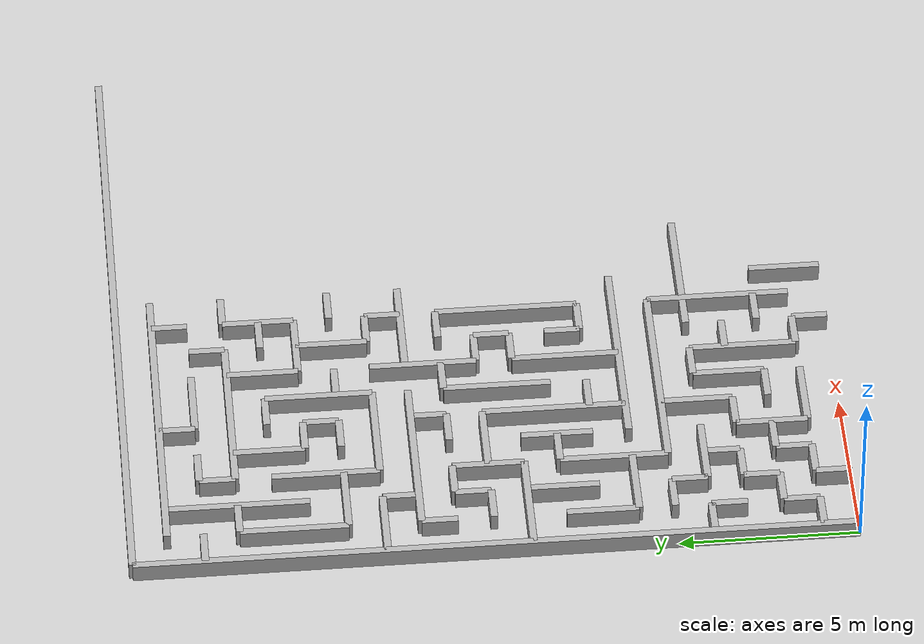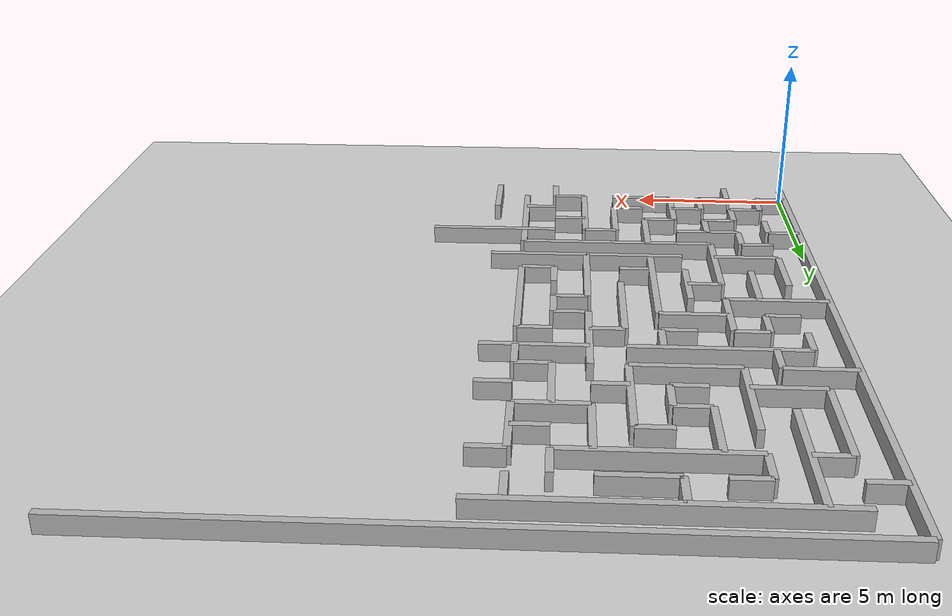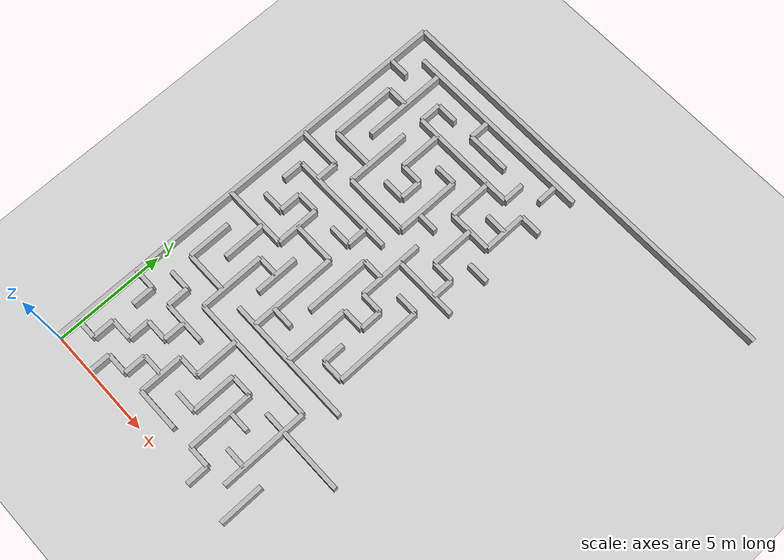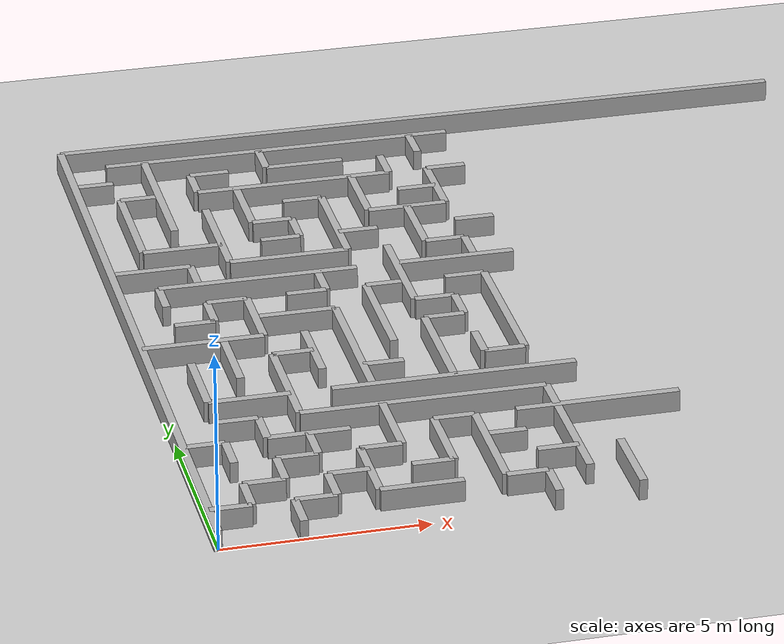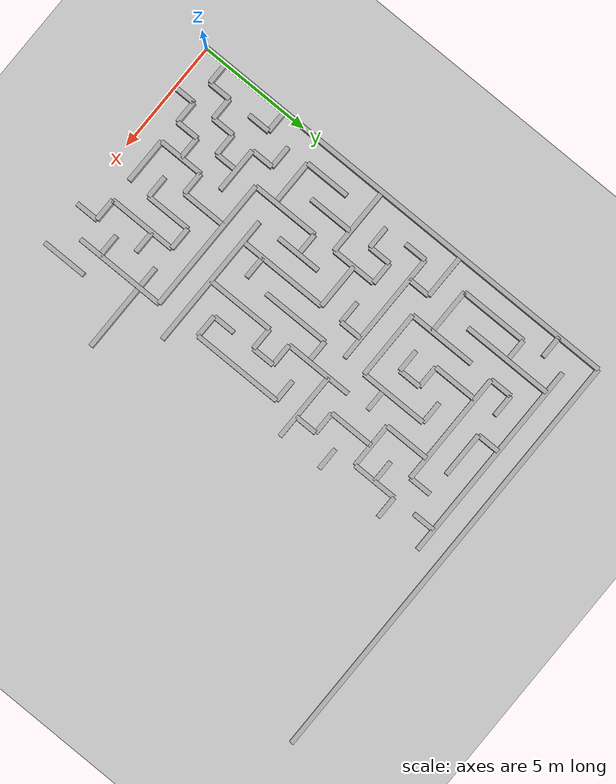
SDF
<sdf version="1.6">
 <world name="maze_world">
  <model name="ground_plane">
   <static>true</static>
   <link name="link">
    <collision name="collision">
     <geometry><plane><normal>0 0 1</normal><size>100 100</size></plane></geometry>
    </collision>
    <visual name="visual">
     <geometry><plane><normal>0 0 1</normal><size>100 100</size></plane></geometry>
     <material><ambient>0.8 0.8 0.8 1</ambient></material>
    </visual>
   </link>
  </model>
  <model name="wall_0">
   <static>true</static>
   <pose>0.5 1 0 0 0 0</pose>
   <link name="link">
    <collision name="collision"><geometry><box><size>1 0.2 1</size></box></geometry></collision>
    <visual name="visual">
     <geometry><box><size>1 0.2 1</size></box></geometry>
     <material><ambient>0.7 0.7 0.7 1</ambient></material>
    </visual>
   </link>
  </model>
  <model name="wall_1">
   <static>true</static>
   <pose>2.5 1 0 0 0 0</pose>
   <link name="link">
    <collision name="collision"><geometry><box><size>1 0.2 1</size></box></geometry></collision>
    <visual name="visual">
     <geometry><box><size>1 0.2 1</size></box></geometry>
     <material><ambient>0.7 0.7 0.7 1</ambient></material>
    </visual>
   </link>
  </model>
  <model name="wall_2">
   <static>true</static>
   <pose>5 1 0 0 0 0</pose>
   <link name="link">
    <collision name="collision"><geometry><box><size>2 0.2 1</size></box></geometry></collision>
    <visual name="visual">
     <geometry><box><size>2 0.2 1</size></box></geometry>
     <material><ambient>0.7 0.7 0.7 1</ambient></material>
    </visual>
   </link>
  </model>
  <model name="wall_3">
   <static>true</static>
   <pose>7.5 1 0 0 0 0</pose>
   <link name="link">
    <collision name="collision"><geometry><box><size>1 0.2 1</size></box></geometry></collision>
    <visual name="visual">
     <geometry><box><size>1 0.2 1</size></box></geometry>
     <material><ambient>0.7 0.7 0.7 1</ambient></material>
    </visual>
   </link>
  </model>
  <model name="wall_7">
   <static>true</static>
   <pose>1.5 2 0 0 0 0</pose>
   <link name="link">
    <collision name="collision"><geometry><box><size>1 0.2 1</size></box></geometry></collision>
    <visual name="visual">
     <geometry><box><size>1 0.2 1</size></box></geometry>
     <material><ambient>0.7 0.7 0.7 1</ambient></material>
    </visual>
   </link>
  </model>
  <model name="wall_8">
   <static>true</static>
   <pose>3.5 2 0 0 0 0</pose>
   <link name="link">
    <collision name="collision"><geometry><box><size>1 0.2 1</size></box></geometry></collision>
    <visual name="visual">
     <geometry><box><size>1 0.2 1</size></box></geometry>
     <material><ambient>0.7 0.7 0.7 1</ambient></material>
    </visual>
   </link>
  </model>
  <model name="wall_9">
   <static>true</static>
   <pose>5.5 2 0 0 0 0</pose>
   <link name="link">
    <collision name="collision"><geometry><box><size>1 0.2 1</size></box></geometry></collision>
    <visual name="visual">
     <geometry><box><size>1 0.2 1</size></box></geometry>
     <material><ambient>0.7 0.7 0.7 1</ambient></material>
    </visual>
   </link>
  </model>
  <model name="wall_10">
   <static>true</static>
   <pose>8.5 2 0 0 0 0</pose>
   <link name="link">
    <collision name="collision"><geometry><box><size>1 0.2 1</size></box></geometry></collision>
    <visual name="visual">
     <geometry><box><size>1 0.2 1</size></box></geometry>
     <material><ambient>0.7 0.7 0.7 1</ambient></material>
    </visual>
   </link>
  </model>
  <model name="wall_14">
   <static>true</static>
   <pose>2.5 3 0 0 0 0</pose>
   <link name="link">
    <collision name="collision"><geometry><box><size>1 0.2 1</size></box></geometry></collision>
    <visual name="visual">
     <geometry><box><size>1 0.2 1</size></box></geometry>
     <material><ambient>0.7 0.7 0.7 1</ambient></material>
    </visual>
   </link>
  </model>
  <model name="wall_15">
   <static>true</static>
   <pose>4.5 3 0 0 0 0</pose>
   <link name="link">
    <collision name="collision"><geometry><box><size>1 0.2 1</size></box></geometry></collision>
    <visual name="visual">
     <geometry><box><size>1 0.2 1</size></box></geometry>
     <material><ambient>0.7 0.7 0.7 1</ambient></material>
    </visual>
   </link>
  </model>
  <model name="wall_16">
   <static>true</static>
   <pose>7.5 3 0 0 0 0</pose>
   <link name="link">
    <collision name="collision"><geometry><box><size>1 0.2 1</size></box></geometry></collision>
    <visual name="visual">
     <geometry><box><size>1 0.2 1</size></box></geometry>
     <material><ambient>0.7 0.7 0.7 1</ambient></material>
    </visual>
   </link>
  </model>
  <model name="wall_20">
   <static>true</static>
   <pose>0.5 4 0 0 0 0</pose>
   <link name="link">
    <collision name="collision"><geometry><box><size>1 0.2 1</size></box></geometry></collision>
    <visual name="visual">
     <geometry><box><size>1 0.2 1</size></box></geometry>
     <material><ambient>0.7 0.7 0.7 1</ambient></material>
    </visual>
   </link>
  </model>
  <model name="wall_21">
   <static>true</static>
   <pose>3 4 0 0 0 0</pose>
   <link name="link">
    <collision name="collision"><geometry><box><size>2 0.2 1</size></box></geometry></collision>
    <visual name="visual">
     <geometry><box><size>2 0.2 1</size></box></geometry>
     <material><ambient>0.7 0.7 0.7 1</ambient></material>
    </visual>
   </link>
  </model>
  <model name="wall_22">
   <static>true</static>
   <pose>6.5 4 0 0 0 0</pose>
   <link name="link">
    <collision name="collision"><geometry><box><size>1 0.2 1</size></box></geometry></collision>
    <visual name="visual">
     <geometry><box><size>1 0.2 1</size></box></geometry>
     <material><ambient>0.7 0.7 0.7 1</ambient></material>
    </visual>
   </link>
  </model>
  <model name="wall_23">
   <static>true</static>
   <pose>10 4 0 0 0 0</pose>
   <link name="link">
    <collision name="collision"><geometry><box><size>4 0.2 1</size></box></geometry></collision>
    <visual name="visual">
     <geometry><box><size>4 0.2 1</size></box></geometry>
     <material><ambient>0.7 0.7 0.7 1</ambient></material>
    </visual>
   </link>
  </model>
  <model name="wall_25">
   <static>true</static>
   <pose>1.5 5 0 0 0 0</pose>
   <link name="link">
    <collision name="collision"><geometry><box><size>1 0.2 1</size></box></geometry></collision>
    <visual name="visual">
     <geometry><box><size>1 0.2 1</size></box></geometry>
     <material><ambient>0.7 0.7 0.7 1</ambient></material>
    </visual>
   </link>
  </model>
  <model name="wall_26">
   <static>true</static>
   <pose>6 5 0 0 0 0</pose>
   <link name="link">
    <collision name="collision"><geometry><box><size>6 0.2 1</size></box></geometry></collision>
    <visual name="visual">
     <geometry><box><size>6 0.2 1</size></box></geometry>
     <material><ambient>0.7 0.7 0.7 1</ambient></material>
    </visual>
   </link>
  </model>
  <model name="wall_30">
   <static>true</static>
   <pose>2 6 0 0 0 0</pose>
   <link name="link">
    <collision name="collision"><geometry><box><size>2 0.2 1</size></box></geometry></collision>
    <visual name="visual">
     <geometry><box><size>2 0.2 1</size></box></geometry>
     <material><ambient>0.7 0.7 0.7 1</ambient></material>
    </visual>
   </link>
  </model>
  <model name="wall_31">
   <static>true</static>
   <pose>7 6 0 0 0 0</pose>
   <link name="link">
    <collision name="collision"><geometry><box><size>6 0.2 1</size></box></geometry></collision>
    <visual name="visual">
     <geometry><box><size>6 0.2 1</size></box></geometry>
     <material><ambient>0.7 0.7 0.7 1</ambient></material>
    </visual>
   </link>
  </model>
  <model name="wall_34">
   <static>true</static>
   <pose>5.5 7 0 0 0 0</pose>
   <link name="link">
    <collision name="collision"><geometry><box><size>1 0.2 1</size></box></geometry></collision>
    <visual name="visual">
     <geometry><box><size>1 0.2 1</size></box></geometry>
     <material><ambient>0.7 0.7 0.7 1</ambient></material>
    </visual>
   </link>
  </model>
  <model name="wall_35">
   <static>true</static>
   <pose>8.5 7 0 0 0 0</pose>
   <link name="link">
    <collision name="collision"><geometry><box><size>1 0.2 1</size></box></geometry></collision>
    <visual name="visual">
     <geometry><box><size>1 0.2 1</size></box></geometry>
     <material><ambient>0.7 0.7 0.7 1</ambient></material>
    </visual>
   </link>
  </model>
  <model name="wall_38">
   <static>true</static>
   <pose>3.5 8 0 0 0 0</pose>
   <link name="link">
    <collision name="collision"><geometry><box><size>1 0.2 1</size></box></geometry></collision>
    <visual name="visual">
     <geometry><box><size>1 0.2 1</size></box></geometry>
     <material><ambient>0.7 0.7 0.7 1</ambient></material>
    </visual>
   </link>
  </model>
  <model name="wall_41">
   <static>true</static>
   <pose>1.5 9 0 0 0 0</pose>
   <link name="link">
    <collision name="collision"><geometry><box><size>3 0.2 1</size></box></geometry></collision>
    <visual name="visual">
     <geometry><box><size>3 0.2 1</size></box></geometry>
     <material><ambient>0.7 0.7 0.7 1</ambient></material>
    </visual>
   </link>
  </model>
  <model name="wall_42">
   <static>true</static>
   <pose>7.5 9 0 0 0 0</pose>
   <link name="link">
    <collision name="collision"><geometry><box><size>1 0.2 1</size></box></geometry></collision>
    <visual name="visual">
     <geometry><box><size>1 0.2 1</size></box></geometry>
     <material><ambient>0.7 0.7 0.7 1</ambient></material>
    </visual>
   </link>
  </model>
  <model name="wall_46">
   <static>true</static>
   <pose>1.5 10 0 0 0 0</pose>
   <link name="link">
    <collision name="collision"><geometry><box><size>1 0.2 1</size></box></geometry></collision>
    <visual name="visual">
     <geometry><box><size>1 0.2 1</size></box></geometry>
     <material><ambient>0.7 0.7 0.7 1</ambient></material>
    </visual>
   </link>
  </model>
  <model name="wall_47">
   <static>true</static>
   <pose>4 10 0 0 0 0</pose>
   <link name="link">
    <collision name="collision"><geometry><box><size>2 0.2 1</size></box></geometry></collision>
    <visual name="visual">
     <geometry><box><size>2 0.2 1</size></box></geometry>
     <material><ambient>0.7 0.7 0.7 1</ambient></material>
    </visual>
   </link>
  </model>
  <model name="wall_48">
   <static>true</static>
   <pose>7.5 10 0 0 0 0</pose>
   <link name="link">
    <collision name="collision"><geometry><box><size>1 0.2 1</size></box></geometry></collision>
    <visual name="visual">
     <geometry><box><size>1 0.2 1</size></box></geometry>
     <material><ambient>0.7 0.7 0.7 1</ambient></material>
    </visual>
   </link>
  </model>
  <model name="wall_51">
   <static>true</static>
   <pose>2.5 11 0 0 0 0</pose>
   <link name="link">
    <collision name="collision"><geometry><box><size>1 0.2 1</size></box></geometry></collision>
    <visual name="visual">
     <geometry><box><size>1 0.2 1</size></box></geometry>
     <material><ambient>0.7 0.7 0.7 1</ambient></material>
    </visual>
   </link>
  </model>
  <model name="wall_52">
   <static>true</static>
   <pose>4.5 11 0 0 0 0</pose>
   <link name="link">
    <collision name="collision"><geometry><box><size>1 0.2 1</size></box></geometry></collision>
    <visual name="visual">
     <geometry><box><size>1 0.2 1</size></box></geometry>
     <material><ambient>0.7 0.7 0.7 1</ambient></material>
    </visual>
   </link>
  </model>
  <model name="wall_53">
   <static>true</static>
   <pose>6.5 11 0 0 0 0</pose>
   <link name="link">
    <collision name="collision"><geometry><box><size>1 0.2 1</size></box></geometry></collision>
    <visual name="visual">
     <geometry><box><size>1 0.2 1</size></box></geometry>
     <material><ambient>0.7 0.7 0.7 1</ambient></material>
    </visual>
   </link>
  </model>
  <model name="wall_54">
   <static>true</static>
   <pose>8.5 11 0 0 0 0</pose>
   <link name="link">
    <collision name="collision"><geometry><box><size>1 0.2 1</size></box></geometry></collision>
    <visual name="visual">
     <geometry><box><size>1 0.2 1</size></box></geometry>
     <material><ambient>0.7 0.7 0.7 1</ambient></material>
    </visual>
   </link>
  </model>
  <model name="wall_56">
   <static>true</static>
   <pose>3.5 12 0 0 0 0</pose>
   <link name="link">
    <collision name="collision"><geometry><box><size>5 0.2 1</size></box></geometry></collision>
    <visual name="visual">
     <geometry><box><size>5 0.2 1</size></box></geometry>
     <material><ambient>0.7 0.7 0.7 1</ambient></material>
    </visual>
   </link>
  </model>
  <model name="wall_57">
   <static>true</static>
   <pose>8.5 12 0 0 0 0</pose>
   <link name="link">
    <collision name="collision"><geometry><box><size>3 0.2 1</size></box></geometry></collision>
    <visual name="visual">
     <geometry><box><size>3 0.2 1</size></box></geometry>
     <material><ambient>0.7 0.7 0.7 1</ambient></material>
    </visual>
   </link>
  </model>
  <model name="wall_60">
   <static>true</static>
   <pose>1 13 0 0 0 0</pose>
   <link name="link">
    <collision name="collision"><geometry><box><size>2 0.2 1</size></box></geometry></collision>
    <visual name="visual">
     <geometry><box><size>2 0.2 1</size></box></geometry>
     <material><ambient>0.7 0.7 0.7 1</ambient></material>
    </visual>
   </link>
  </model>
  <model name="wall_61">
   <static>true</static>
   <pose>4.5 13 0 0 0 0</pose>
   <link name="link">
    <collision name="collision"><geometry><box><size>3 0.2 1</size></box></geometry></collision>
    <visual name="visual">
     <geometry><box><size>3 0.2 1</size></box></geometry>
     <material><ambient>0.7 0.7 0.7 1</ambient></material>
    </visual>
   </link>
  </model>
  <model name="wall_62">
   <static>true</static>
   <pose>8.5 13 0 0 0 0</pose>
   <link name="link">
    <collision name="collision"><geometry><box><size>1 0.2 1</size></box></geometry></collision>
    <visual name="visual">
     <geometry><box><size>1 0.2 1</size></box></geometry>
     <material><ambient>0.7 0.7 0.7 1</ambient></material>
    </visual>
   </link>
  </model>
  <model name="wall_66">
   <static>true</static>
   <pose>2 14 0 0 0 0</pose>
   <link name="link">
    <collision name="collision"><geometry><box><size>2 0.2 1</size></box></geometry></collision>
    <visual name="visual">
     <geometry><box><size>2 0.2 1</size></box></geometry>
     <material><ambient>0.7 0.7 0.7 1</ambient></material>
    </visual>
   </link>
  </model>
  <model name="wall_67">
   <static>true</static>
   <pose>4.5 14 0 0 0 0</pose>
   <link name="link">
    <collision name="collision"><geometry><box><size>1 0.2 1</size></box></geometry></collision>
    <visual name="visual">
     <geometry><box><size>1 0.2 1</size></box></geometry>
     <material><ambient>0.7 0.7 0.7 1</ambient></material>
    </visual>
   </link>
  </model>
  <model name="wall_68">
   <static>true</static>
   <pose>6.5 14 0 0 0 0</pose>
   <link name="link">
    <collision name="collision"><geometry><box><size>1 0.2 1</size></box></geometry></collision>
    <visual name="visual">
     <geometry><box><size>1 0.2 1</size></box></geometry>
     <material><ambient>0.7 0.7 0.7 1</ambient></material>
    </visual>
   </link>
  </model>
  <model name="wall_69">
   <static>true</static>
   <pose>9.5 14 0 0 0 0</pose>
   <link name="link">
    <collision name="collision"><geometry><box><size>1 0.2 1</size></box></geometry></collision>
    <visual name="visual">
     <geometry><box><size>1 0.2 1</size></box></geometry>
     <material><ambient>0.7 0.7 0.7 1</ambient></material>
    </visual>
   </link>
  </model>
  <model name="wall_72">
   <static>true</static>
   <pose>4.5 15 0 0 0 0</pose>
   <link name="link">
    <collision name="collision"><geometry><box><size>1 0.2 1</size></box></geometry></collision>
    <visual name="visual">
     <geometry><box><size>1 0.2 1</size></box></geometry>
     <material><ambient>0.7 0.7 0.7 1</ambient></material>
    </visual>
   </link>
  </model>
  <model name="wall_73">
   <static>true</static>
   <pose>8 15 0 0 0 0</pose>
   <link name="link">
    <collision name="collision"><geometry><box><size>2 0.2 1</size></box></geometry></collision>
    <visual name="visual">
     <geometry><box><size>2 0.2 1</size></box></geometry>
     <material><ambient>0.7 0.7 0.7 1</ambient></material>
    </visual>
   </link>
  </model>
  <model name="wall_76">
   <static>true</static>
   <pose>5.5 16 0 0 0 0</pose>
   <link name="link">
    <collision name="collision"><geometry><box><size>1 0.2 1</size></box></geometry></collision>
    <visual name="visual">
     <geometry><box><size>1 0.2 1</size></box></geometry>
     <material><ambient>0.7 0.7 0.7 1</ambient></material>
    </visual>
   </link>
  </model>
  <model name="wall_77">
   <static>true</static>
   <pose>8.5 16 0 0 0 0</pose>
   <link name="link">
    <collision name="collision"><geometry><box><size>1 0.2 1</size></box></geometry></collision>
    <visual name="visual">
     <geometry><box><size>1 0.2 1</size></box></geometry>
     <material><ambient>0.7 0.7 0.7 1</ambient></material>
    </visual>
   </link>
  </model>
  <model name="wall_82">
   <static>true</static>
   <pose>1.5 17 0 0 0 0</pose>
   <link name="link">
    <collision name="collision"><geometry><box><size>1 0.2 1</size></box></geometry></collision>
    <visual name="visual">
     <geometry><box><size>1 0.2 1</size></box></geometry>
     <material><ambient>0.7 0.7 0.7 1</ambient></material>
    </visual>
   </link>
  </model>
  <model name="wall_83">
   <static>true</static>
   <pose>5.5 17 0 0 0 0</pose>
   <link name="link">
    <collision name="collision"><geometry><box><size>5 0.2 1</size></box></geometry></collision>
    <visual name="visual">
     <geometry><box><size>5 0.2 1</size></box></geometry>
     <material><ambient>0.7 0.7 0.7 1</ambient></material>
    </visual>
   </link>
  </model>
  <model name="wall_84">
   <static>true</static>
   <pose>9.5 17 0 0 0 0</pose>
   <link name="link">
    <collision name="collision"><geometry><box><size>1 0.2 1</size></box></geometry></collision>
    <visual name="visual">
     <geometry><box><size>1 0.2 1</size></box></geometry>
     <material><ambient>0.7 0.7 0.7 1</ambient></material>
    </visual>
   </link>
  </model>
  <model name="wall_88">
   <static>true</static>
   <pose>0.5 18 0 0 0 0</pose>
   <link name="link">
    <collision name="collision"><geometry><box><size>1 0.2 1</size></box></geometry></collision>
    <visual name="visual">
     <geometry><box><size>1 0.2 1</size></box></geometry>
     <material><ambient>0.7 0.7 0.7 1</ambient></material>
    </visual>
   </link>
  </model>
  <model name="wall_89">
   <static>true</static>
   <pose>3.5 18 0 0 0 0</pose>
   <link name="link">
    <collision name="collision"><geometry><box><size>1 0.2 1</size></box></geometry></collision>
    <visual name="visual">
     <geometry><box><size>1 0.2 1</size></box></geometry>
     <material><ambient>0.7 0.7 0.7 1</ambient></material>
    </visual>
   </link>
  </model>
  <model name="wall_90">
   <static>true</static>
   <pose>6 18 0 0 0 0</pose>
   <link name="link">
    <collision name="collision"><geometry><box><size>2 0.2 1</size></box></geometry></collision>
    <visual name="visual">
     <geometry><box><size>2 0.2 1</size></box></geometry>
     <material><ambient>0.7 0.7 0.7 1</ambient></material>
    </visual>
   </link>
  </model>
  <model name="wall_94">
   <static>true</static>
   <pose>5.5 19 0 0 0 0</pose>
   <link name="link">
    <collision name="collision"><geometry><box><size>9 0.2 1</size></box></geometry></collision>
    <visual name="visual">
     <geometry><box><size>9 0.2 1</size></box></geometry>
     <material><ambient>0.7 0.7 0.7 1</ambient></material>
    </visual>
   </link>
  </model>
  <model name="wall_98">
   <static>true</static>
   <pose>1 1.5 0 0 0 0</pose>
   <link name="link">
    <collision name="collision"><geometry><box><size>0.2 1 1</size></box></geometry></collision>
    <visual name="visual">
     <geometry><box><size>0.2 1 1</size></box></geometry>
     <material><ambient>0.7 0.7 0.7 1</ambient></material>
    </visual>
   </link>
  </model>
  <model name="wall_99">
   <static>true</static>
   <pose>1 3.5 0 0 0 0</pose>
   <link name="link">
    <collision name="collision"><geometry><box><size>0.2 1 1</size></box></geometry></collision>
    <visual name="visual">
     <geometry><box><size>0.2 1 1</size></box></geometry>
     <material><ambient>0.7 0.7 0.7 1</ambient></material>
    </visual>
   </link>
  </model>
  <model name="wall_100">
   <static>true</static>
   <pose>1 7 0 0 0 0</pose>
   <link name="link">
    <collision name="collision"><geometry><box><size>0.2 2 1</size></box></geometry></collision>
    <visual name="visual">
     <geometry><box><size>0.2 2 1</size></box></geometry>
     <material><ambient>0.7 0.7 0.7 1</ambient></material>
    </visual>
   </link>
  </model>
  <model name="wall_101">
   <static>true</static>
   <pose>1 11.5 0 0 0 0</pose>
   <link name="link">
    <collision name="collision"><geometry><box><size>0.2 1 1</size></box></geometry></collision>
    <visual name="visual">
     <geometry><box><size>0.2 1 1</size></box></geometry>
     <material><ambient>0.7 0.7 0.7 1</ambient></material>
    </visual>
   </link>
  </model>
  <model name="wall_102">
   <static>true</static>
   <pose>1 15.5 0 0 0 0</pose>
   <link name="link">
    <collision name="collision"><geometry><box><size>0.2 3 1</size></box></geometry></collision>
    <visual name="visual">
     <geometry><box><size>0.2 3 1</size></box></geometry>
     <material><ambient>0.7 0.7 0.7 1</ambient></material>
    </visual>
   </link>
  </model>
  <model name="wall_103">
   <static>true</static>
   <pose>2 0.5 0 0 0 0</pose>
   <link name="link">
    <collision name="collision"><geometry><box><size>0.2 1 1</size></box></geometry></collision>
    <visual name="visual">
     <geometry><box><size>0.2 1 1</size></box></geometry>
     <material><ambient>0.7 0.7 0.7 1</ambient></material>
    </visual>
   </link>
  </model>
  <model name="wall_104">
   <static>true</static>
   <pose>2 2.5 0 0 0 0</pose>
   <link name="link">
    <collision name="collision"><geometry><box><size>0.2 1 1</size></box></geometry></collision>
    <visual name="visual">
     <geometry><box><size>0.2 1 1</size></box></geometry>
     <material><ambient>0.7 0.7 0.7 1</ambient></material>
    </visual>
   </link>
  </model>
  <model name="wall_105">
   <static>true</static>
   <pose>2 4.5 0 0 0 0</pose>
   <link name="link">
    <collision name="collision"><geometry><box><size>0.2 1 1</size></box></geometry></collision>
    <visual name="visual">
     <geometry><box><size>0.2 1 1</size></box></geometry>
     <material><ambient>0.7 0.7 0.7 1</ambient></material>
    </visual>
   </link>
  </model>
  <model name="wall_106">
   <static>true</static>
   <pose>2 8 0 0 0 0</pose>
   <link name="link">
    <collision name="collision"><geometry><box><size>0.2 2 1</size></box></geometry></collision>
    <visual name="visual">
     <geometry><box><size>0.2 2 1</size></box></geometry>
     <material><ambient>0.7 0.7 0.7 1</ambient></material>
    </visual>
   </link>
  </model>
  <model name="wall_107">
   <static>true</static>
   <pose>2 10.5 0 0 0 0</pose>
   <link name="link">
    <collision name="collision"><geometry><box><size>0.2 1 1</size></box></geometry></collision>
    <visual name="visual">
     <geometry><box><size>0.2 1 1</size></box></geometry>
     <material><ambient>0.7 0.7 0.7 1</ambient></material>
    </visual>
   </link>
  </model>
  <model name="wall_108">
   <static>true</static>
   <pose>2 12.5 0 0 0 0</pose>
   <link name="link">
    <collision name="collision"><geometry><box><size>0.2 1 1</size></box></geometry></collision>
    <visual name="visual">
     <geometry><box><size>0.2 1 1</size></box></geometry>
     <material><ambient>0.7 0.7 0.7 1</ambient></material>
    </visual>
   </link>
  </model>
  <model name="wall_109">
   <static>true</static>
   <pose>2 17 0 0 0 0</pose>
   <link name="link">
    <collision name="collision"><geometry><box><size>0.2 4 1</size></box></geometry></collision>
    <visual name="visual">
     <geometry><box><size>0.2 4 1</size></box></geometry>
     <material><ambient>0.7 0.7 0.7 1</ambient></material>
    </visual>
   </link>
  </model>
  <model name="wall_110">
   <static>true</static>
   <pose>3 1.5 0 0 0 0</pose>
   <link name="link">
    <collision name="collision"><geometry><box><size>0.2 1 1</size></box></geometry></collision>
    <visual name="visual">
     <geometry><box><size>0.2 1 1</size></box></geometry>
     <material><ambient>0.7 0.7 0.7 1</ambient></material>
    </visual>
   </link>
  </model>
  <model name="wall_111">
   <static>true</static>
   <pose>3 3.5 0 0 0 0</pose>
   <link name="link">
    <collision name="collision"><geometry><box><size>0.2 1 1</size></box></geometry></collision>
    <visual name="visual">
     <geometry><box><size>0.2 1 1</size></box></geometry>
     <material><ambient>0.7 0.7 0.7 1</ambient></material>
    </visual>
   </link>
  </model>
  <model name="wall_112">
   <static>true</static>
   <pose>3 6.5 0 0 0 0</pose>
   <link name="link">
    <collision name="collision"><geometry><box><size>0.2 3 1</size></box></geometry></collision>
    <visual name="visual">
     <geometry><box><size>0.2 3 1</size></box></geometry>
     <material><ambient>0.7 0.7 0.7 1</ambient></material>
    </visual>
   </link>
  </model>
  <model name="wall_113">
   <static>true</static>
   <pose>3 10 0 0 0 0</pose>
   <link name="link">
    <collision name="collision"><geometry><box><size>0.2 2 1</size></box></geometry></collision>
    <visual name="visual">
     <geometry><box><size>0.2 2 1</size></box></geometry>
     <material><ambient>0.7 0.7 0.7 1</ambient></material>
    </visual>
   </link>
  </model>
  <model name="wall_114">
   <static>true</static>
   <pose>3 14.5 0 0 0 0</pose>
   <link name="link">
    <collision name="collision"><geometry><box><size>0.2 3 1</size></box></geometry></collision>
    <visual name="visual">
     <geometry><box><size>0.2 3 1</size></box></geometry>
     <material><ambient>0.7 0.7 0.7 1</ambient></material>
    </visual>
   </link>
  </model>
  <model name="wall_115">
   <static>true</static>
   <pose>3 17.5 0 0 0 0</pose>
   <link name="link">
    <collision name="collision"><geometry><box><size>0.2 1 1</size></box></geometry></collision>
    <visual name="visual">
     <geometry><box><size>0.2 1 1</size></box></geometry>
     <material><ambient>0.7 0.7 0.7 1</ambient></material>
    </visual>
   </link>
  </model>
  <model name="wall_116">
   <static>true</static>
   <pose>4 2 0 0 0 0</pose>
   <link name="link">
    <collision name="collision"><geometry><box><size>0.2 2 1</size></box></geometry></collision>
    <visual name="visual">
     <geometry><box><size>0.2 2 1</size></box></geometry>
     <material><ambient>0.7 0.7 0.7 1</ambient></material>
    </visual>
   </link>
  </model>
  <model name="wall_117">
   <static>true</static>
   <pose>4 8 0 0 0 0</pose>
   <link name="link">
    <collision name="collision"><geometry><box><size>0.2 2 1</size></box></geometry></collision>
    <visual name="visual">
     <geometry><box><size>0.2 2 1</size></box></geometry>
     <material><ambient>0.7 0.7 0.7 1</ambient></material>
    </visual>
   </link>
  </model>
  <model name="wall_118">
   <static>true</static>
   <pose>4 16 0 0 0 0</pose>
   <link name="link">
    <collision name="collision"><geometry><box><size>0.2 2 1</size></box></geometry></collision>
    <visual name="visual">
     <geometry><box><size>0.2 2 1</size></box></geometry>
     <material><ambient>0.7 0.7 0.7 1</ambient></material>
    </visual>
   </link>
  </model>
  <model name="wall_119">
   <static>true</static>
   <pose>5 4 0 0 0 0</pose>
   <link name="link">
    <collision name="collision"><geometry><box><size>0.2 2 1</size></box></geometry></collision>
    <visual name="visual">
     <geometry><box><size>0.2 2 1</size></box></geometry>
     <material><ambient>0.7 0.7 0.7 1</ambient></material>
    </visual>
   </link>
  </model>
  <model name="wall_120">
   <static>true</static>
   <pose>5 8 0 0 0 0</pose>
   <link name="link">
    <collision name="collision"><geometry><box><size>0.2 4 1</size></box></geometry></collision>
    <visual name="visual">
     <geometry><box><size>0.2 4 1</size></box></geometry>
     <material><ambient>0.7 0.7 0.7 1</ambient></material>
    </visual>
   </link>
  </model>
  <model name="wall_121">
   <static>true</static>
   <pose>5 11.5 0 0 0 0</pose>
   <link name="link">
    <collision name="collision"><geometry><box><size>0.2 1 1</size></box></geometry></collision>
    <visual name="visual">
     <geometry><box><size>0.2 1 1</size></box></geometry>
     <material><ambient>0.7 0.7 0.7 1</ambient></material>
    </visual>
   </link>
  </model>
  <model name="wall_122">
   <static>true</static>
   <pose>5 14.5 0 0 0 0</pose>
   <link name="link">
    <collision name="collision"><geometry><box><size>0.2 1 1</size></box></geometry></collision>
    <visual name="visual">
     <geometry><box><size>0.2 1 1</size></box></geometry>
     <material><ambient>0.7 0.7 0.7 1</ambient></material>
    </visual>
   </link>
  </model>
  <model name="wall_123">
   <static>true</static>
   <pose>5 18.5 0 0 0 0</pose>
   <link name="link">
    <collision name="collision"><geometry><box><size>0.2 1 1</size></box></geometry></collision>
    <visual name="visual">
     <geometry><box><size>0.2 1 1</size></box></geometry>
     <material><ambient>0.7 0.7 0.7 1</ambient></material>
    </visual>
   </link>
  </model>
  <model name="wall_124">
   <static>true</static>
   <pose>6 3 0 0 0 0</pose>
   <link name="link">
    <collision name="collision"><geometry><box><size>0.2 2 1</size></box></geometry></collision>
    <visual name="visual">
     <geometry><box><size>0.2 2 1</size></box></geometry>
     <material><ambient>0.7 0.7 0.7 1</ambient></material>
    </visual>
   </link>
  </model>
  <model name="wall_125">
   <static>true</static>
   <pose>6 9.5 0 0 0 0</pose>
   <link name="link">
    <collision name="collision"><geometry><box><size>0.2 3 1</size></box></geometry></collision>
    <visual name="visual">
     <geometry><box><size>0.2 3 1</size></box></geometry>
     <material><ambient>0.7 0.7 0.7 1</ambient></material>
    </visual>
   </link>
  </model>
  <model name="wall_126">
   <static>true</static>
   <pose>6 14.5 0 0 0 0</pose>
   <link name="link">
    <collision name="collision"><geometry><box><size>0.2 3 1</size></box></geometry></collision>
    <visual name="visual">
     <geometry><box><size>0.2 3 1</size></box></geometry>
     <material><ambient>0.7 0.7 0.7 1</ambient></material>
    </visual>
   </link>
  </model>
  <model name="wall_127">
   <static>true</static>
   <pose>7 2.5 0 0 0 0</pose>
   <link name="link">
    <collision name="collision"><geometry><box><size>0.2 3 1</size></box></geometry></collision>
    <visual name="visual">
     <geometry><box><size>0.2 3 1</size></box></geometry>
     <material><ambient>0.7 0.7 0.7 1</ambient></material>
    </visual>
   </link>
  </model>
  <model name="wall_128">
   <static>true</static>
   <pose>7 7.5 0 0 0 0</pose>
   <link name="link">
    <collision name="collision"><geometry><box><size>0.2 3 1</size></box></geometry></collision>
    <visual name="visual">
     <geometry><box><size>0.2 3 1</size></box></geometry>
     <material><ambient>0.7 0.7 0.7 1</ambient></material>
    </visual>
   </link>
  </model>
  <model name="wall_129">
   <static>true</static>
   <pose>7 11.5 0 0 0 0</pose>
   <link name="link">
    <collision name="collision"><geometry><box><size>0.2 3 1</size></box></geometry></collision>
    <visual name="visual">
     <geometry><box><size>0.2 3 1</size></box></geometry>
     <material><ambient>0.7 0.7 0.7 1</ambient></material>
    </visual>
   </link>
  </model>
  <model name="wall_130">
   <static>true</static>
   <pose>7 16 0 0 0 0</pose>
   <link name="link">
    <collision name="collision"><geometry><box><size>0.2 2 1</size></box></geometry></collision>
    <visual name="visual">
     <geometry><box><size>0.2 2 1</size></box></geometry>
     <material><ambient>0.7 0.7 0.7 1</ambient></material>
    </visual>
   </link>
  </model>
  <model name="wall_131">
   <static>true</static>
   <pose>8 0.5 0 0 0 0</pose>
   <link name="link">
    <collision name="collision"><geometry><box><size>0.2 1 1</size></box></geometry></collision>
    <visual name="visual">
     <geometry><box><size>0.2 1 1</size></box></geometry>
     <material><ambient>0.7 0.7 0.7 1</ambient></material>
    </visual>
   </link>
  </model>
  <model name="wall_132">
   <static>true</static>
   <pose>8 7.5 0 0 0 0</pose>
   <link name="link">
    <collision name="collision"><geometry><box><size>0.2 1 1</size></box></geometry></collision>
    <visual name="visual">
     <geometry><box><size>0.2 1 1</size></box></geometry>
     <material><ambient>0.7 0.7 0.7 1</ambient></material>
    </visual>
   </link>
  </model>
  <model name="wall_133">
   <static>true</static>
   <pose>8 9.5 0 0 0 0</pose>
   <link name="link">
    <collision name="collision"><geometry><box><size>0.2 1 1</size></box></geometry></collision>
    <visual name="visual">
     <geometry><box><size>0.2 1 1</size></box></geometry>
     <material><ambient>0.7 0.7 0.7 1</ambient></material>
    </visual>
   </link>
  </model>
  <model name="wall_134">
   <static>true</static>
   <pose>8 14 0 0 0 0</pose>
   <link name="link">
    <collision name="collision"><geometry><box><size>0.2 2 1</size></box></geometry></collision>
    <visual name="visual">
     <geometry><box><size>0.2 2 1</size></box></geometry>
     <material><ambient>0.7 0.7 0.7 1</ambient></material>
    </visual>
   </link>
  </model>
  <model name="wall_135">
   <static>true</static>
   <pose>8 17.5 0 0 0 0</pose>
   <link name="link">
    <collision name="collision"><geometry><box><size>0.2 1 1</size></box></geometry></collision>
    <visual name="visual">
     <geometry><box><size>0.2 1 1</size></box></geometry>
     <material><ambient>0.7 0.7 0.7 1</ambient></material>
    </visual>
   </link>
  </model>
  <model name="wall_136">
   <static>true</static>
   <pose>9 3 0 0 0 0</pose>
   <link name="link">
    <collision name="collision"><geometry><box><size>0.2 4 1</size></box></geometry></collision>
    <visual name="visual">
     <geometry><box><size>0.2 4 1</size></box></geometry>
     <material><ambient>0.7 0.7 0.7 1</ambient></material>
    </visual>
   </link>
  </model>
  <model name="wall_137">
   <static>true</static>
   <pose>9 9 0 0 0 0</pose>
   <link name="link">
    <collision name="collision"><geometry><box><size>0.2 4 1</size></box></geometry></collision>
    <visual name="visual">
     <geometry><box><size>0.2 4 1</size></box></geometry>
     <material><ambient>0.7 0.7 0.7 1</ambient></material>
    </visual>
   </link>
  </model>
  <model name="wall_138">
   <static>true</static>
   <pose>9 12.5 0 0 0 0</pose>
   <link name="link">
    <collision name="collision"><geometry><box><size>0.2 1 1</size></box></geometry></collision>
    <visual name="visual">
     <geometry><box><size>0.2 1 1</size></box></geometry>
     <material><ambient>0.7 0.7 0.7 1</ambient></material>
    </visual>
   </link>
  </model>
  <model name="wall_139">
   <static>true</static>
   <pose>9 16 0 0 0 0</pose>
   <link name="link">
    <collision name="collision"><geometry><box><size>0.2 2 1</size></box></geometry></collision>
    <visual name="visual">
     <geometry><box><size>0.2 2 1</size></box></geometry>
     <material><ambient>0.7 0.7 0.7 1</ambient></material>
    </visual>
   </link>
  </model>
  <model name="wall_140">
   <static>true</static>
   <pose>9 18.5 0 0 0 0</pose>
   <link name="link">
    <collision name="collision"><geometry><box><size>0.2 1 1</size></box></geometry></collision>
    <visual name="visual">
     <geometry><box><size>0.2 1 1</size></box></geometry>
     <material><ambient>0.7 0.7 0.7 1</ambient></material>
    </visual>
   </link>
  </model>
  <model name="wall_141">
   <static>true</static>
   <pose>10 1 0 0 0 0</pose>
   <link name="link">
    <collision name="collision"><geometry><box><size>0.2 2 1</size></box></geometry></collision>
    <visual name="visual">
     <geometry><box><size>0.2 2 1</size></box></geometry>
     <material><ambient>0.7 0.7 0.7 1</ambient></material>
    </visual>
   </link>
  </model>
  <model name="wall_190">
   <static>true</static>
   <pose>9.5 20 0 0 0 0</pose>
   <link name="link">
    <collision name="collision"><geometry><box><size>19 0.2 1</size></box></geometry></collision>
    <visual name="visual">
     <geometry><box><size>19 0.2 1</size></box></geometry>
     <material><ambient>0.7 0.7 0.7 1</ambient></material>
    </visual>
   </link>
  </model>
  <model name="wall_191">
   <static>true</static>
   <pose>0 10 0 0 0 0</pose>
   <link name="link">
    <collision name="collision"><geometry><box><size>0.2 20 1</size></box></geometry></collision>
    <visual name="visual">
     <geometry><box><size>0.2 20 1</size></box></geometry>
     <material><ambient>0.7 0.7 0.7 1</ambient></material>
    </visual>
   </link>
  </model>
 </world>
</sdf>
